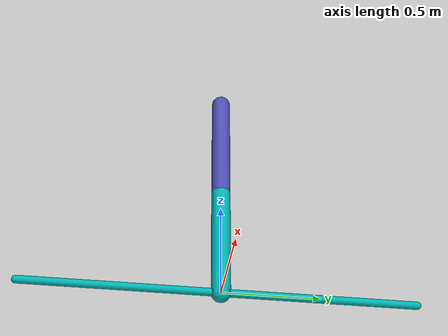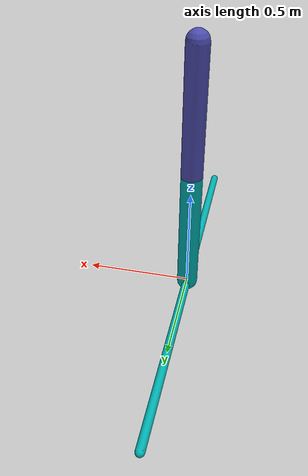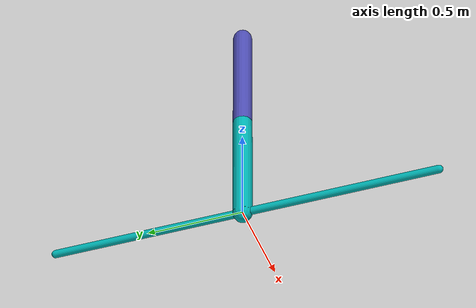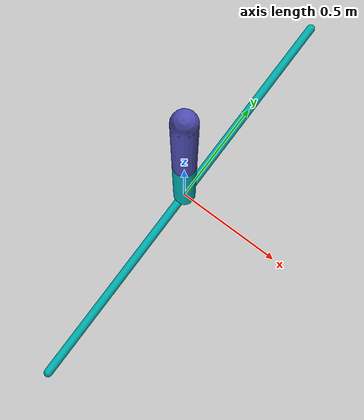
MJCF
<mujoco model='acrobot'>
    <compiler inertiafromgeom='true' coordinate='local'/>

    <default>
        <joint damping='.05'/>
        <geom contype='0'/>
    </default>

    <option timestep='0.02' integrator='RK4'>
    </option>

    <size nstack='3000'/>

    <worldbody>
        <camera pos='0 0 0' fovy = '20'/>
        <geom name='floor' pos='0 0 -4.0' size='40 40 40' type='plane' rgba='0.8 0.9 0.8 1' />
        <geom name='rail' type='capsule' pos='0 0 0' quat='0 0 0.707 0.707' size='0.02 1'
              rgba='0 0.7 0.7 1' />
        <body name='top' pos='0 0 0'>
            <joint name = 'actuator' type = 'hinge' pos='0 0 0' axis = '0 1 0' />
            <geom name='arm' type='capsule' fromto='0 0 0 0 0 .6' size='.05'
                      rgba='0 0.7 0.7 1' />
                      <body name='bottom' pos='0 0 .6'>
                          <geom name='leg' type='capsule' fromto='0 0 0 0 0 .6' size='.05'
                                rgba='0.3 0.3 0.7 1'/>
                          <joint name = 'waist' type = 'hinge' pos= '0 0 0' axis = '0 1 0' />
                      </body>
        </body>
    </worldbody>

    <actuator>
        <motor name='spin' joint='waist'/>
    </actuator>

</mujoco>
